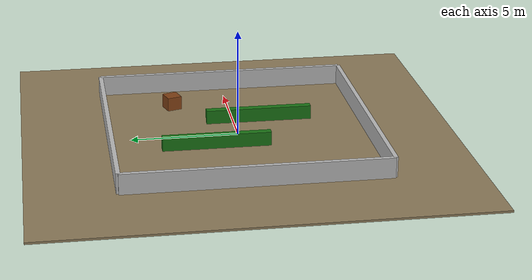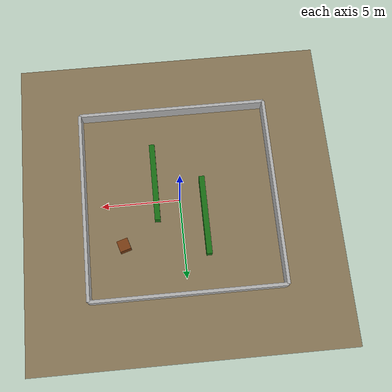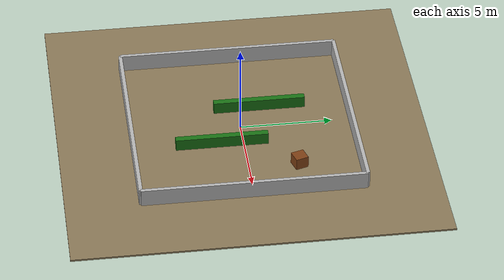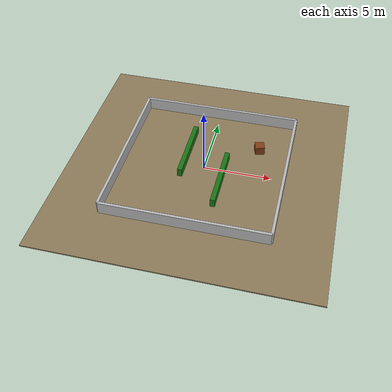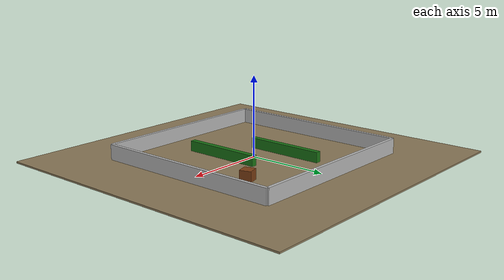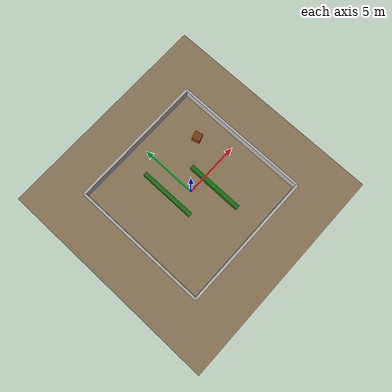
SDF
<?xml version="1.0"?>
<sdf version="1.9">
  <world name="rover_world">
    <physics name="1ms" type="ignored"><max_step_size>0.001</max_step_size><real_time_factor>1.0</real_time_factor></physics>
    <plugin filename="gz-sim-physics-system" name="gz::sim::systems::Physics"/>
    <plugin filename="gz-sim-user-commands-system" name="gz::sim::systems::UserCommands"/>
    <plugin filename="gz-sim-scene-broadcaster-system" name="gz::sim::systems::SceneBroadcaster"/>
    <plugin filename="gz-sim-sensors-system" name="gz::sim::systems::Sensors"><render_engine>ogre2</render_engine></plugin>
    <plugin filename="gz-sim-imu-system" name="gz::sim::systems::Imu"/>

    <light type="directional" name="sun"><cast_shadows>true</cast_shadows><pose>0 0 10 0 0 0</pose>
      <diffuse>0.8 0.8 0.8 1</diffuse><specular>0.2 0.2 0.2 1</specular><direction>-0.5 0.1 -0.9</direction>
    </light>
    <model name="ground"><static>true</static><link name="link">
      <collision name="collision"><geometry><box><size>20 20 0.1</size></box></geometry></collision>
      <visual name="visual"><geometry><box><size>20 20 0.1</size></box></geometry><material><diffuse>0.55 0.48 0.35 1</diffuse></material></visual>
    </link></model>

    <model name="north_wall"><static>true</static><pose>0 6 0.5 0 0 0</pose><link name="link"><collision name="c"><geometry><box><size>12 0.2 1</size></box></geometry></collision><visual name="v"><geometry><box><size>12 0.2 1</size></box></geometry></visual></link></model>
    <model name="south_wall"><static>true</static><pose>0 -6 0.5 0 0 0</pose><link name="link"><collision name="c"><geometry><box><size>12 0.2 1</size></box></geometry></collision><visual name="v"><geometry><box><size>12 0.2 1</size></box></geometry></visual></link></model>
    <model name="east_wall"><static>true</static><pose>6 0 0.5 0 0 0</pose><link name="link"><collision name="c"><geometry><box><size>0.2 12 1</size></box></geometry></collision><visual name="v"><geometry><box><size>0.2 12 1</size></box></geometry></visual></link></model>
    <model name="west_wall"><static>true</static><pose>-6 0 0.5 0 0 0</pose><link name="link"><collision name="c"><geometry><box><size>0.2 12 1</size></box></geometry></collision><visual name="v"><geometry><box><size>0.2 12 1</size></box></geometry></visual></link></model>

    <model name="crop_row_a"><static>true</static><pose>-1.5 1.2 0.35 0 0 0</pose><link name="link"><collision name="c"><geometry><box><size>0.35 5 0.7</size></box></geometry></collision><visual name="v"><geometry><box><size>0.35 5 0.7</size></box></geometry><material><diffuse>0.1 0.45 0.08 1</diffuse></material></visual></link></model>
    <model name="crop_row_b"><static>true</static><pose>1.5 -1.2 0.35 0 0 0</pose><link name="link"><collision name="c"><geometry><box><size>0.35 5 0.7</size></box></geometry></collision><visual name="v"><geometry><box><size>0.35 5 0.7</size></box></geometry><material><diffuse>0.1 0.45 0.08 1</diffuse></material></visual></link></model>
    <model name="crate"><static>true</static><pose>3.7 2.7 0.35 0 0 0.3</pose><link name="link"><collision name="c"><geometry><box><size>0.7 0.7 0.7</size></box></geometry></collision><visual name="v"><geometry><box><size>0.7 0.7 0.7</size></box></geometry><material><diffuse>0.5 0.25 0.08 1</diffuse></material></visual></link></model>
  </world>
</sdf>
